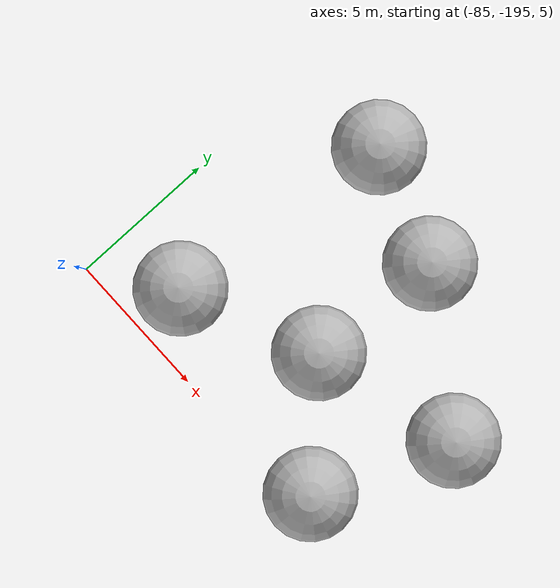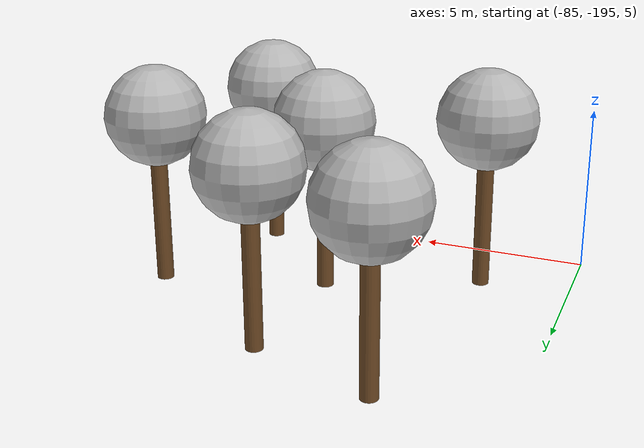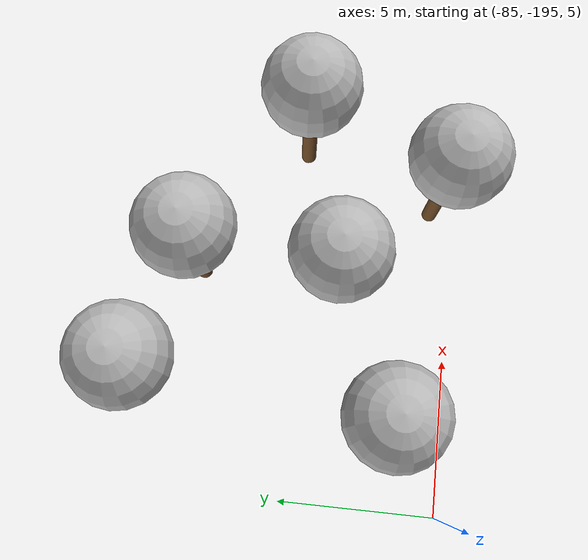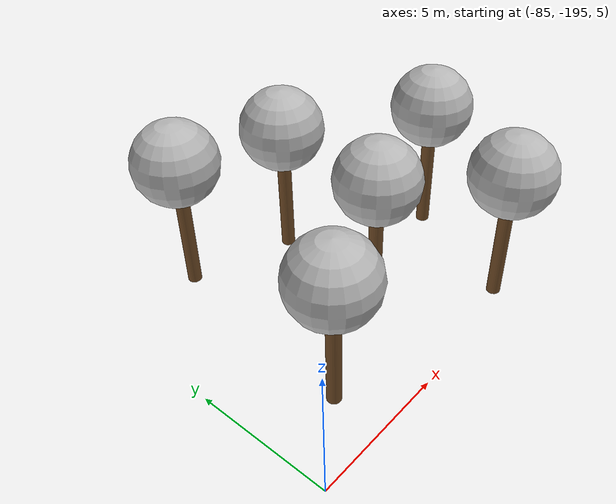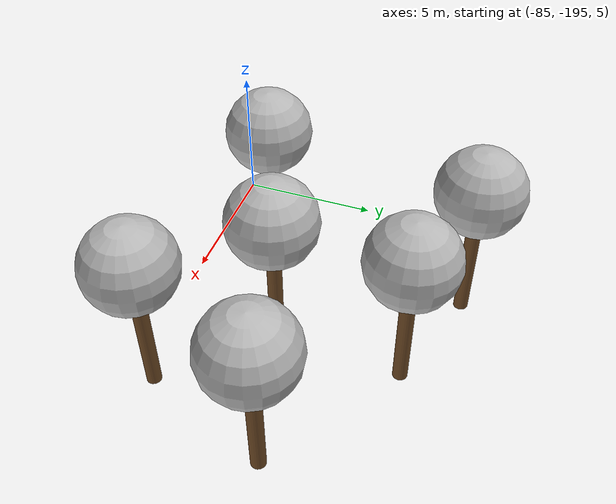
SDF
<sdf version="1.7">
 <world name="default">
  <model name="tree_simple_0_clone">
   <static>1</static>
   <link name="link">
    <pose>0 0 0.1 0 -0 0</pose>
    <inertial>
     <mass>666</mass>
     <inertia>
      <ixx>0.0861167</ixx>
      <ixy>0</ixy>
      <ixz>0</ixz>
      <iyy>0.0861167</iyy>
      <iyz>0</iyz>
      <izz>0.0861167</izz>
     </inertia>
    </inertial>
    <collision name="collision_trunk">
     <pose>0 0 2 0 -0 0</pose>
     <geometry><cylinder><radius>0.25</radius><length>4</length></cylinder></geometry>
     <surface>
      <contact>
       <poissons_ratio>0.347</poissons_ratio>
       <elastic_modulus>8.8e+09</elastic_modulus>
       <ode><kp>100000</kp><kd>100</kd><max_vel>100</max_vel><min_depth>0.001</min_depth></ode>
      </contact>
      <friction>
       <torsional>
        <coefficient>1</coefficient>
        <use_patch_radius>0</use_patch_radius>
        <surface_radius>0.01</surface_radius>
       </torsional>
      </friction>
     </surface>
    </collision>
    <collision name="collision_treetop">
     <pose>0 0 5.2 0 -0 0</pose>
     <geometry><sphere><radius>1.5</radius></sphere></geometry>
     <surface>
      <contact>
       <poissons_ratio>0.347</poissons_ratio>
       <elastic_modulus>8.8e+09</elastic_modulus>
       <ode><kp>100000</kp><kd>100</kd><max_vel>100</max_vel><min_depth>0.001</min_depth></ode>
      </contact>
      <friction>
       <torsional>
        <coefficient>1</coefficient>
        <use_patch_radius>0</use_patch_radius>
        <surface_radius>0.01</surface_radius>
       </torsional>
      </friction>
     </surface>
    </collision>
    <visual name="trunk">
     <pose>0 0 2 0 -0 0</pose>
     <geometry><cylinder><radius>0.25</radius><length>4</length></cylinder></geometry>
     <material>
      <script>
       <uri>model://tree_simple/scripts</uri>
       <uri>model://tree_simple/materials/textures</uri>
       <name>TreeSimple/Trunk</name>
      </script>
     </material>
    </visual>
    <visual name="treetop">
     <pose>0 0 5.2 0 -0 0</pose>
     <geometry><sphere><radius>1.5</radius></sphere></geometry>
     <material>
      <script>
       <uri>model://tree_simple/scripts</uri>
       <uri>model://tree_simple/materials/textures</uri>
       <name>TreeSimple/Treetop</name>
      </script>
     </material>
    </visual>
   </link>
   <pose>-81.3875 -185.462 4.71357 0 -0 0</pose>
  </model>
  <model name="tree_simple_0_clone_clone">
   <static>1</static>
   <link name="link">
    <pose>0 0 0.1 0 -0 0</pose>
    <inertial>
     <mass>666</mass>
     <inertia>
      <ixx>0.0861167</ixx>
      <ixy>0</ixy>
      <ixz>0</ixz>
      <iyy>0.0861167</iyy>
      <iyz>0</iyz>
      <izz>0.0861167</izz>
     </inertia>
    </inertial>
    <collision name="collision_trunk">
     <pose>0 0 2 0 -0 0</pose>
     <geometry><cylinder><radius>0.25</radius><length>4</length></cylinder></geometry>
     <surface>
      <contact>
       <poissons_ratio>0.347</poissons_ratio>
       <elastic_modulus>8.8e+09</elastic_modulus>
       <ode><kp>100000</kp><kd>100</kd><max_vel>100</max_vel><min_depth>0.001</min_depth></ode>
      </contact>
      <friction>
       <torsional>
        <coefficient>1</coefficient>
        <use_patch_radius>0</use_patch_radius>
        <surface_radius>0.01</surface_radius>
       </torsional>
      </friction>
     </surface>
    </collision>
    <collision name="collision_treetop">
     <pose>0 0 5.2 0 -0 0</pose>
     <geometry><sphere><radius>1.5</radius></sphere></geometry>
     <surface>
      <contact>
       <poissons_ratio>0.347</poissons_ratio>
       <elastic_modulus>8.8e+09</elastic_modulus>
       <ode><kp>100000</kp><kd>100</kd><max_vel>100</max_vel><min_depth>0.001</min_depth></ode>
      </contact>
      <friction>
       <torsional>
        <coefficient>1</coefficient>
        <use_patch_radius>0</use_patch_radius>
        <surface_radius>0.01</surface_radius>
       </torsional>
      </friction>
     </surface>
    </collision>
    <visual name="trunk">
     <pose>0 0 2 0 -0 0</pose>
     <geometry><cylinder><radius>0.25</radius><length>4</length></cylinder></geometry>
     <material>
      <script>
       <uri>model://tree_simple/scripts</uri>
       <uri>model://tree_simple/materials/textures</uri>
       <name>TreeSimple/Trunk</name>
      </script>
     </material>
    </visual>
    <visual name="treetop">
     <pose>0 0 5.2 0 -0 0</pose>
     <geometry><sphere><radius>1.5</radius></sphere></geometry>
     <material>
      <script>
       <uri>model://tree_simple/scripts</uri>
       <uri>model://tree_simple/materials/textures</uri>
       <name>TreeSimple/Treetop</name>
      </script>
     </material>
    </visual>
   </link>
   <pose>-77.8894 -191.143 4.71357 0 -0 0</pose>
  </model>
  <model name="tree_simple_0_clone_clone_0">
   <static>1</static>
   <link name="link">
    <pose>0 0 0.1 0 -0 0</pose>
    <inertial>
     <mass>666</mass>
     <inertia>
      <ixx>0.0861167</ixx>
      <ixy>0</ixy>
      <ixz>0</ixz>
      <iyy>0.0861167</iyy>
      <iyz>0</iyz>
      <izz>0.0861167</izz>
     </inertia>
    </inertial>
    <collision name="collision_trunk">
     <pose>0 0 2 0 -0 0</pose>
     <geometry><cylinder><radius>0.25</radius><length>4</length></cylinder></geometry>
     <surface>
      <contact>
       <poissons_ratio>0.347</poissons_ratio>
       <elastic_modulus>8.8e+09</elastic_modulus>
       <ode><kp>100000</kp><kd>100</kd><max_vel>100</max_vel><min_depth>0.001</min_depth></ode>
      </contact>
      <friction>
       <torsional>
        <coefficient>1</coefficient>
        <use_patch_radius>0</use_patch_radius>
        <surface_radius>0.01</surface_radius>
       </torsional>
      </friction>
     </surface>
    </collision>
    <collision name="collision_treetop">
     <pose>0 0 5.2 0 -0 0</pose>
     <geometry><sphere><radius>1.5</radius></sphere></geometry>
     <surface>
      <contact>
       <poissons_ratio>0.347</poissons_ratio>
       <elastic_modulus>8.8e+09</elastic_modulus>
       <ode><kp>100000</kp><kd>100</kd><max_vel>100</max_vel><min_depth>0.001</min_depth></ode>
      </contact>
      <friction>
       <torsional>
        <coefficient>1</coefficient>
        <use_patch_radius>0</use_patch_radius>
        <surface_radius>0.01</surface_radius>
       </torsional>
      </friction>
     </surface>
    </collision>
    <visual name="trunk">
     <pose>0 0 2 0 -0 0</pose>
     <geometry><cylinder><radius>0.25</radius><length>4</length></cylinder></geometry>
     <material>
      <script>
       <uri>model://tree_simple/scripts</uri>
       <uri>model://tree_simple/materials/textures</uri>
       <name>TreeSimple/Trunk</name>
      </script>
     </material>
    </visual>
    <visual name="treetop">
     <pose>0 0 5.2 0 -0 0</pose>
     <geometry><sphere><radius>1.5</radius></sphere></geometry>
     <material>
      <script>
       <uri>model://tree_simple/scripts</uri>
       <uri>model://tree_simple/materials/textures</uri>
       <name>TreeSimple/Treetop</name>
      </script>
     </material>
    </visual>
   </link>
   <pose>-77.6397 -186.709 4.71357 0 -0 0</pose>
  </model>
  <model name="tree_simple_0_clone_clone_1">
   <static>1</static>
   <link name="link">
    <pose>0 0 0.1 0 -0 0</pose>
    <inertial>
     <mass>666</mass>
     <inertia>
      <ixx>0.0861167</ixx>
      <ixy>0</ixy>
      <ixz>0</ixz>
      <iyy>0.0861167</iyy>
      <iyz>0</iyz>
      <izz>0.0861167</izz>
     </inertia>
    </inertial>
    <collision name="collision_trunk">
     <pose>0 0 2 0 -0 0</pose>
     <geometry><cylinder><radius>0.25</radius><length>4</length></cylinder></geometry>
     <surface>
      <contact>
       <poissons_ratio>0.347</poissons_ratio>
       <elastic_modulus>8.8e+09</elastic_modulus>
       <ode><kp>100000</kp><kd>100</kd><max_vel>100</max_vel><min_depth>0.001</min_depth></ode>
      </contact>
      <friction>
       <torsional>
        <coefficient>1</coefficient>
        <use_patch_radius>0</use_patch_radius>
        <surface_radius>0.01</surface_radius>
       </torsional>
      </friction>
     </surface>
    </collision>
    <collision name="collision_treetop">
     <pose>0 0 5.2 0 -0 0</pose>
     <geometry><sphere><radius>1.5</radius></sphere></geometry>
     <surface>
      <contact>
       <poissons_ratio>0.347</poissons_ratio>
       <elastic_modulus>8.8e+09</elastic_modulus>
       <ode><kp>100000</kp><kd>100</kd><max_vel>100</max_vel><min_depth>0.001</min_depth></ode>
      </contact>
      <friction>
       <torsional>
        <coefficient>1</coefficient>
        <use_patch_radius>0</use_patch_radius>
        <surface_radius>0.01</surface_radius>
       </torsional>
      </friction>
     </surface>
    </collision>
    <visual name="trunk">
     <pose>0 0 2 0 -0 0</pose>
     <geometry><cylinder><radius>0.25</radius><length>4</length></cylinder></geometry>
     <material>
      <script>
       <uri>model://tree_simple/scripts</uri>
       <uri>model://tree_simple/materials/textures</uri>
       <name>TreeSimple/Trunk</name>
      </script>
     </material>
    </visual>
    <visual name="treetop">
     <pose>0 0 5.2 0 -0 0</pose>
     <geometry><sphere><radius>1.5</radius></sphere></geometry>
     <material>
      <script>
       <uri>model://tree_simple/scripts</uri>
       <uri>model://tree_simple/materials/textures</uri>
       <name>TreeSimple/Treetop</name>
      </script>
     </material>
    </visual>
   </link>
   <pose>-73.0575 -189.857 4.71357 0 -0 0</pose>
  </model>
  <model name="tree_simple_0_clone_clone_2">
   <static>1</static>
   <link name="link">
    <pose>0 0 0.1 0 -0 0</pose>
    <inertial>
     <mass>666</mass>
     <inertia>
      <ixx>0.0861167</ixx>
      <ixy>0</ixy>
      <ixz>0</ixz>
      <iyy>0.0861167</iyy>
      <iyz>0</iyz>
      <izz>0.0861167</izz>
     </inertia>
    </inertial>
    <collision name="collision_trunk">
     <pose>0 0 2 0 -0 0</pose>
     <geometry><cylinder><radius>0.25</radius><length>4</length></cylinder></geometry>
     <surface>
      <contact>
       <poissons_ratio>0.347</poissons_ratio>
       <elastic_modulus>8.8e+09</elastic_modulus>
       <ode><kp>100000</kp><kd>100</kd><max_vel>100</max_vel><min_depth>0.001</min_depth></ode>
      </contact>
      <friction>
       <torsional>
        <coefficient>1</coefficient>
        <use_patch_radius>0</use_patch_radius>
        <surface_radius>0.01</surface_radius>
       </torsional>
      </friction>
     </surface>
    </collision>
    <collision name="collision_treetop">
     <pose>0 0 5.2 0 -0 0</pose>
     <geometry><sphere><radius>1.5</radius></sphere></geometry>
     <surface>
      <contact>
       <poissons_ratio>0.347</poissons_ratio>
       <elastic_modulus>8.8e+09</elastic_modulus>
       <ode><kp>100000</kp><kd>100</kd><max_vel>100</max_vel><min_depth>0.001</min_depth></ode>
      </contact>
      <friction>
       <torsional>
        <coefficient>1</coefficient>
        <use_patch_radius>0</use_patch_radius>
        <surface_radius>0.01</surface_radius>
       </torsional>
      </friction>
     </surface>
    </collision>
    <visual name="trunk">
     <pose>0 0 2 0 -0 0</pose>
     <geometry><cylinder><radius>0.25</radius><length>4</length></cylinder></geometry>
     <material>
      <script>
       <uri>model://tree_simple/scripts</uri>
       <uri>model://tree_simple/materials/textures</uri>
       <name>TreeSimple/Trunk</name>
      </script>
     </material>
    </visual>
    <visual name="treetop">
     <pose>0 0 5.2 0 -0 0</pose>
     <geometry><sphere><radius>1.5</radius></sphere></geometry>
     <material>
      <script>
       <uri>model://tree_simple/scripts</uri>
       <uri>model://tree_simple/materials/textures</uri>
       <name>TreeSimple/Treetop</name>
      </script>
     </material>
    </visual>
   </link>
   <pose>-74.8088 -194.274 4.71357 0 -0 0</pose>
  </model>
  <model name="tree_simple_0_clone_clone_5">
   <static>1</static>
   <link name="link">
    <pose>0 0 0.1 0 -0 0</pose>
    <inertial>
     <mass>666</mass>
     <inertia>
      <ixx>0.0861167</ixx>
      <ixy>0</ixy>
      <ixz>0</ixz>
      <iyy>0.0861167</iyy>
      <iyz>0</iyz>
      <izz>0.0861167</izz>
     </inertia>
    </inertial>
    <collision name="collision_trunk">
     <pose>0 0 2 0 -0 0</pose>
     <geometry><cylinder><radius>0.25</radius><length>4</length></cylinder></geometry>
     <surface>
      <contact>
       <poissons_ratio>0.347</poissons_ratio>
       <elastic_modulus>8.8e+09</elastic_modulus>
       <ode><kp>100000</kp><kd>100</kd><max_vel>100</max_vel><min_depth>0.001</min_depth></ode>
      </contact>
      <friction>
       <torsional>
        <coefficient>1</coefficient>
        <use_patch_radius>0</use_patch_radius>
        <surface_radius>0.01</surface_radius>
       </torsional>
      </friction>
     </surface>
    </collision>
    <collision name="collision_treetop">
     <pose>0 0 5.2 0 -0 0</pose>
     <geometry><sphere><radius>1.5</radius></sphere></geometry>
     <surface>
      <contact>
       <poissons_ratio>0.347</poissons_ratio>
       <elastic_modulus>8.8e+09</elastic_modulus>
       <ode><kp>100000</kp><kd>100</kd><max_vel>100</max_vel><min_depth>0.001</min_depth></ode>
      </contact>
      <friction>
       <torsional>
        <coefficient>1</coefficient>
        <use_patch_radius>0</use_patch_radius>
        <surface_radius>0.01</surface_radius>
       </torsional>
      </friction>
     </surface>
    </collision>
    <visual name="trunk">
     <pose>0 0 2 0 -0 0</pose>
     <geometry><cylinder><radius>0.25</radius><length>4</length></cylinder></geometry>
     <material>
      <script>
       <uri>model://tree_simple/scripts</uri>
       <uri>model://tree_simple/materials/textures</uri>
       <name>TreeSimple/Trunk</name>
      </script>
     </material>
    </visual>
    <visual name="treetop">
     <pose>0 0 5.2 0 -0 0</pose>
     <geometry><sphere><radius>1.5</radius></sphere></geometry>
     <material>
      <script>
       <uri>model://tree_simple/scripts</uri>
       <uri>model://tree_simple/materials/textures</uri>
       <name>TreeSimple/Treetop</name>
      </script>
     </material>
    </visual>
   </link>
   <pose>-82.2659 -192.993 4.71357 0 -0 0</pose>
  </model>
 </world>
</sdf>
